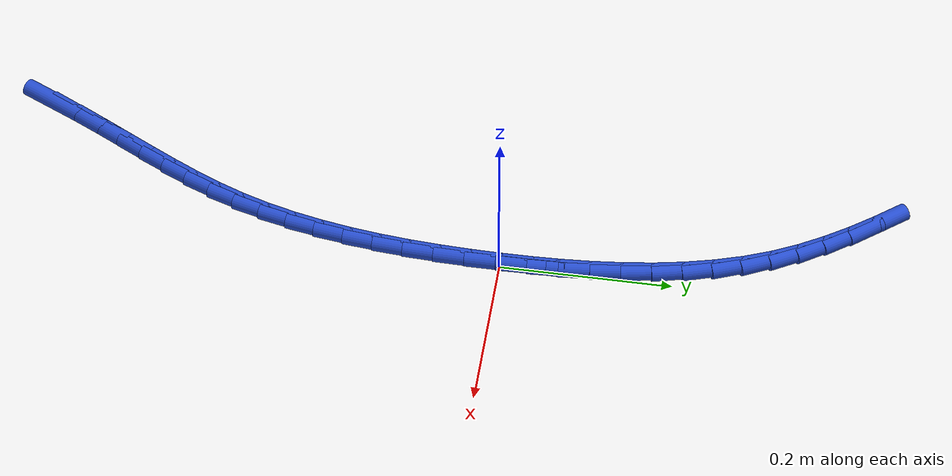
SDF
<sdf version="1.6">
 <world name="default">
  <model name="ground_plane">
   <static>1</static>
   <link name="link">
    <collision name="collision">
     <geometry><plane><normal>0 0 1</normal><size>100 100</size></plane></geometry>
     <surface><friction><ode><mu>100</mu><mu2>50</mu2></ode></friction></surface>
    </collision>
    <visual name="visual">
     <cast_shadows>0</cast_shadows>
     <geometry><plane><normal>0 0 1</normal><size>100 100</size></plane></geometry>
     <material>
      <script><uri>file://media/materials/scripts/gazebo.material</uri><name>Gazebo/WhiteGlow</name></script>
     </material>
    </visual>
   </link>
  </model>
  <model name="line">
   <link name="link_0">
    <pose>-1.2576745200831851e-17 -1.457167719820518e-16 0.01 0 1.57 1.5697502538254684</pose>
    <collision name="collision">
     <geometry><cylinder><radius>0.01</radius><length>0.08</length></cylinder></geometry>
    </collision>
    <visual name="visual">
     <material>
      <script><name>Gazebo/Blue</name><uri>file://media/materials/scripts/gazebo.material</uri></script>
     </material>
     <geometry><cylinder><radius>0.01</radius><length>0.08</length></cylinder></geometry>
    </visual>
   </link>
   <link name="link_1">
    <pose>3.7914222122537875e-05 0.03624432463236966 0.01 0 1.57 -1.545426358394945</pose>
    <collision name="collision">
     <geometry><cylinder><radius>0.01</radius><length>0.08</length></cylinder></geometry>
    </collision>
    <visual name="visual">
     <material>
      <script><name>Gazebo/Blue</name><uri>file://media/materials/scripts/gazebo.material</uri></script>
     </material>
     <geometry><cylinder><radius>0.01</radius><length>0.08</length></cylinder></geometry>
    </visual>
   </link>
   <link name="link_2">
    <pose>-0.0008799646611043588 0.07241630300828511 0.01 0 1.57 -1.513676365276203</pose>
    <collision name="collision">
     <geometry><cylinder><radius>0.01</radius><length>0.08</length></cylinder></geometry>
    </collision>
    <visual name="visual">
     <material>
      <script><name>Gazebo/Blue</name><uri>file://media/materials/scripts/gazebo.material</uri></script>
     </material>
     <geometry><cylinder><radius>0.01</radius><length>0.08</length></cylinder></geometry>
    </visual>
   </link>
   <link name="link_3">
    <pose>-0.002934808854095043 0.10835135756664083 0.01 0 1.57 -1.476156049259588</pose>
    <collision name="collision">
     <geometry><cylinder><radius>0.01</radius><length>0.08</length></cylinder></geometry>
    </collision>
    <visual name="visual">
     <material>
      <script><name>Gazebo/Blue</name><uri>file://media/materials/scripts/gazebo.material</uri></script>
     </material>
     <geometry><cylinder><radius>0.01</radius><length>0.08</length></cylinder></geometry>
    </visual>
   </link>
   <link name="link_4">
    <pose>-0.006307790561263857 0.1438849107463313 0.01 0 1.57 -1.4323499008135117</pose>
    <collision name="collision">
     <geometry><cylinder><radius>0.01</radius><length>0.08</length></cylinder></geometry>
    </collision>
    <visual name="visual">
     <material>
      <script><name>Gazebo/Blue</name><uri>file://media/materials/scripts/gazebo.material</uri></script>
     </material>
     <geometry><cylinder><radius>0.01</radius><length>0.08</length></cylinder></geometry>
    </visual>
   </link>
   <link name="link_5">
    <pose>-0.011180081987025135 0.17885238498625114 0.01 0 1.57 -1.3816878339021579</pose>
    <collision name="collision">
     <geometry><cylinder><radius>0.01</radius><length>0.08</length></cylinder></geometry>
    </collision>
    <visual name="visual">
     <material>
      <script><name>Gazebo/Blue</name><uri>file://media/materials/scripts/gazebo.material</uri></script>
     </material>
     <geometry><cylinder><radius>0.01</radius><length>0.08</length></cylinder></geometry>
    </visual>
   </link>
   <link name="link_6">
    <pose>-0.017732855335793215 0.21308920272529502 0.01 0 1.57 -1.3235879838514422</pose>
    <collision name="collision">
     <geometry><cylinder><radius>0.01</radius><length>0.08</length></cylinder></geometry>
    </collision>
    <visual name="visual">
     <material>
      <script><name>Gazebo/Blue</name><uri>file://media/materials/scripts/gazebo.material</uri></script>
     </material>
     <geometry><cylinder><radius>0.01</radius><length>0.08</length></cylinder></geometry>
    </visual>
   </link>
   <link name="link_7">
    <pose>-0.026147282811982454 0.24643078640235747 0.01 0 1.57 -1.257526359712742</pose>
    <collision name="collision">
     <geometry><cylinder><radius>0.01</radius><length>0.08</length></cylinder></geometry>
    </collision>
    <visual name="visual">
     <material>
      <script><name>Gazebo/Blue</name><uri>file://media/materials/scripts/gazebo.material</uri></script>
     </material>
     <geometry><cylinder><radius>0.01</radius><length>0.08</length></cylinder></geometry>
    </visual>
   </link>
   <link name="link_8">
    <pose>-0.03660453662000715 0.27871255845633297 0.01 0 1.57 -1.1831409296070645</pose>
    <collision name="collision">
     <geometry><cylinder><radius>0.01</radius><length>0.08</length></cylinder></geometry>
    </collision>
    <visual name="visual">
     <material>
      <script><name>Gazebo/Blue</name><uri>file://media/materials/scripts/gazebo.material</uri></script>
     </material>
     <geometry><cylinder><radius>0.01</radius><length>0.08</length></cylinder></geometry>
    </visual>
   </link>
   <link name="link_9">
    <pose>-0.049285787808515905 0.30976994225653803 0.01 0 1.57 -1.1034608789886708</pose>
    <collision name="collision">
     <geometry><cylinder><radius>0.01</radius><length>0.08</length></cylinder></geometry>
    </collision>
    <visual name="visual">
     <material>
      <script><name>Gazebo/Blue</name><uri>file://media/materials/scripts/gazebo.material</uri></script>
     </material>
     <geometry><cylinder><radius>0.01</radius><length>0.08</length></cylinder></geometry>
    </visual>
   </link>
   <link name="link_10">
    <pose>-0.06429029239537064 0.3395043049179422 0.01 0 1.57 -1.030679955492988</pose>
    <collision name="collision">
     <geometry><cylinder><radius>0.01</radius><length>0.08</length></cylinder></geometry>
    </collision>
    <visual name="visual">
     <material>
      <script><name>Gazebo/Blue</name><uri>file://media/materials/scripts/gazebo.material</uri></script>
     </material>
     <geometry><cylinder><radius>0.01</radius><length>0.08</length></cylinder></geometry>
    </visual>
   </link>
   <link name="link_11">
    <pose>-0.0814130886452059 0.36806191681624084 0.01 0 1.57 -0.9684711311641314</pose>
    <collision name="collision">
     <geometry><cylinder><radius>0.01</radius><length>0.08</length></cylinder></geometry>
    </collision>
    <visual name="visual">
     <material>
      <script><name>Gazebo/Blue</name><uri>file://media/materials/scripts/gazebo.material</uri></script>
     </material>
     <geometry><cylinder><radius>0.01</radius><length>0.08</length></cylinder></geometry>
    </visual>
   </link>
   <link name="link_12">
    <pose>-0.10037860725663243 0.3956458892674348 0.01 0 1.57 -0.9172846801272387</pose>
    <collision name="collision">
     <geometry><cylinder><radius>0.01</radius><length>0.08</length></cylinder></geometry>
    </collision>
    <visual name="visual">
     <material>
      <script><name>Gazebo/Blue</name><uri>file://media/materials/scripts/gazebo.material</uri></script>
     </material>
     <geometry><cylinder><radius>0.01</radius><length>0.08</length></cylinder></geometry>
    </visual>
   </link>
   <link name="link_13">
    <pose>-0.12091127892826103 0.4224593335875253 0.01 0 1.57 -0.8771255958523567</pose>
    <collision name="collision">
     <geometry><cylinder><radius>0.01</radius><length>0.08</length></cylinder></geometry>
    </collision>
    <visual name="visual">
     <material>
      <script><name>Gazebo/Blue</name><uri>file://media/materials/scripts/gazebo.material</uri></script>
     </material>
     <geometry><cylinder><radius>0.01</radius><length>0.08</length></cylinder></geometry>
    </visual>
   </link>
   <link name="link_183">
    <pose>-0.17584830570616333 -0.5551097737119648 0.01 0 1.57 1.102348649117087</pose>
    <collision name="collision">
     <geometry><cylinder><radius>0.01</radius><length>0.08</length></cylinder></geometry>
    </collision>
    <visual name="visual">
     <material>
      <script><name>Gazebo/Blue</name><uri>file://media/materials/scripts/gazebo.material</uri></script>
     </material>
     <geometry><cylinder><radius>0.01</radius><length>0.08</length></cylinder></geometry>
    </visual>
   </link>
   <link name="link_184">
    <pose>-0.15923647087553555 -0.5222810057136303 0.01 0 1.57 1.0764316126448985</pose>
    <collision name="collision">
     <geometry><cylinder><radius>0.01</radius><length>0.08</length></cylinder></geometry>
    </collision>
    <visual name="visual">
     <material>
      <script><name>Gazebo/Blue</name><uri>file://media/materials/scripts/gazebo.material</uri></script>
     </material>
     <geometry><cylinder><radius>0.01</radius><length>0.08</length></cylinder></geometry>
    </visual>
   </link>
   <link name="link_185">
    <pose>-0.1422253556514544 -0.49072094907286595 0.01 0 1.57 1.0614722572534159</pose>
    <collision name="collision">
     <geometry><cylinder><radius>0.01</radius><length>0.08</length></cylinder></geometry>
    </collision>
    <visual name="visual">
     <material>
      <script><name>Gazebo/Blue</name><uri>file://media/materials/scripts/gazebo.material</uri></script>
     </material>
     <geometry><cylinder><radius>0.01</radius><length>0.08</length></cylinder></geometry>
    </visual>
   </link>
   <link name="link_186">
    <pose>-0.1251268656907155 -0.4601043717496842 0.01 0 1.57 1.058409439546105</pose>
    <collision name="collision">
     <geometry><cylinder><radius>0.01</radius><length>0.08</length></cylinder></geometry>
    </collision>
    <visual name="visual">
     <material>
      <script><name>Gazebo/Blue</name><uri>file://media/materials/scripts/gazebo.material</uri></script>
     </material>
     <geometry><cylinder><radius>0.01</radius><length>0.08</length></cylinder></geometry>
    </visual>
   </link>
   <link name="link_187">
    <pose>-0.10825290665011442 -0.4301060417040978 0.01 0 1.57 1.0679634717951816</pose>
    <collision name="collision">
     <geometry><cylinder><radius>0.01</radius><length>0.08</length></cylinder></geometry>
    </collision>
    <visual name="visual">
     <material>
      <script><name>Gazebo/Blue</name><uri>file://media/materials/scripts/gazebo.material</uri></script>
     </material>
     <geometry><cylinder><radius>0.01</radius><length>0.08</length></cylinder></geometry>
    </visual>
   </link>
   <link name="link_188">
    <pose>-0.09191538418644675 -0.4004007268961193 0.01 0 1.57 1.09059795317401</pose>
    <collision name="collision">
     <geometry><cylinder><radius>0.01</radius><length>0.08</length></cylinder></geometry>
    </collision>
    <visual name="visual">
     <material>
      <script><name>Gazebo/Blue</name><uri>file://media/materials/scripts/gazebo.material</uri></script>
     </material>
     <geometry><cylinder><radius>0.01</radius><length>0.08</length></cylinder></geometry>
    </visual>
   </link>
   <link name="link_189">
    <pose>-0.07642620395650813 -0.3706631952857616 0.01 0 1.57 1.1264315813278005</pose>
    <collision name="collision">
     <geometry><cylinder><radius>0.01</radius><length>0.08</length></cylinder></geometry>
    </collision>
    <visual name="visual">
     <material>
      <script><name>Gazebo/Blue</name><uri>file://media/materials/scripts/gazebo.material</uri></script>
     </material>
     <geometry><cylinder><radius>0.01</radius><length>0.08</length></cylinder></geometry>
    </visual>
   </link>
   <link name="link_190">
    <pose>-0.062097271617094184 -0.34056821483303734 0.01 0 1.57 1.1750987855696322</pose>
    <collision name="collision">
     <geometry><cylinder><radius>0.01</radius><length>0.08</length></cylinder></geometry>
    </collision>
    <visual name="visual">
     <material>
      <script><name>Gazebo/Blue</name><uri>file://media/materials/scripts/gazebo.material</uri></script>
     </material>
     <geometry><cylinder><radius>0.01</radius><length>0.08</length></cylinder></geometry>
    </visual>
   </link>
   <link name="link_191">
    <pose>-0.04924049282500047 -0.30979055349795925 0.01 0 1.57 1.2330919272209035</pose>
    <collision name="collision">
     <geometry><cylinder><radius>0.01</radius><length>0.08</length></cylinder></geometry>
    </collision>
    <visual name="visual">
     <material>
      <script><name>Gazebo/Blue</name><uri>file://media/materials/scripts/gazebo.material</uri></script>
     </material>
     <geometry><cylinder><radius>0.01</radius><length>0.08</length></cylinder></geometry>
    </visual>
   </link>
   <link name="link_192">
    <pose>-0.03810203618862546 -0.27807116722719816 0.01 0 1.57 1.2887352277167714</pose>
    <collision name="collision">
     <geometry><cylinder><radius>0.01</radius><length>0.08</length></cylinder></geometry>
    </collision>
    <visual name="visual">
     <material>
      <script><name>Gazebo/Blue</name><uri>file://media/materials/scripts/gazebo.material</uri></script>
     </material>
     <geometry><cylinder><radius>0.01</radius><length>0.08</length></cylinder></geometry>
    </visual>
   </link>
   <link name="link_193">
    <pose>-0.02864483753702829 -0.2454361876465392 0.01 0 1.57 1.339160870154734</pose>
    <collision name="collision">
     <geometry><cylinder><radius>0.01</radius><length>0.08</length></cylinder></geometry>
    </collision>
    <visual name="visual">
     <material>
      <script><name>Gazebo/Blue</name><uri>file://media/materials/scripts/gazebo.material</uri></script>
     </material>
     <geometry><cylinder><radius>0.01</radius><length>0.08</length></cylinder></geometry>
    </visual>
   </link>
   <link name="link_194">
    <pose>-0.020755568176264675 -0.21198853405864446 0.01 0 1.57 1.3845956435244473</pose>
    <collision name="collision">
     <geometry><cylinder><radius>0.01</radius><length>0.08</length></cylinder></geometry>
    </collision>
    <visual name="visual">
     <material>
      <script><name>Gazebo/Blue</name><uri>file://media/materials/scripts/gazebo.material</uri></script>
     </material>
     <geometry><cylinder><radius>0.01</radius><length>0.08</length></cylinder></geometry>
    </visual>
   </link>
   <link name="link_195">
    <pose>-0.014320898336349119 -0.17783112684959723 0.01 0 1.57 1.4253187483686571</pose>
    <collision name="collision">
     <geometry><cylinder><radius>0.01</radius><length>0.08</length></cylinder></geometry>
    </collision>
    <visual name="visual">
     <material>
      <script><name>Gazebo/Blue</name><uri>file://media/materials/scripts/gazebo.material</uri></script>
     </material>
     <geometry><cylinder><radius>0.01</radius><length>0.08</length></cylinder></geometry>
    </visual>
   </link>
   <link name="link_196">
    <pose>-0.00922749824729613 -0.1430668864054813 0.01 0 1.57 1.4616300596002838</pose>
    <collision name="collision">
     <geometry><cylinder><radius>0.01</radius><length>0.08</length></cylinder></geometry>
    </collision>
    <visual name="visual">
     <material>
      <script><name>Gazebo/Blue</name><uri>file://media/materials/scripts/gazebo.material</uri></script>
     </material>
     <geometry><cylinder><radius>0.01</radius><length>0.08</length></cylinder></geometry>
    </visual>
   </link>
   <link name="link_197">
    <pose>-0.005362038139120213 -0.10779873311238002 0.01 0 1.57 1.493827409139011</pose>
    <collision name="collision">
     <geometry><cylinder><radius>0.01</radius><length>0.08</length></cylinder></geometry>
    </collision>
    <visual name="visual">
     <material>
      <script><name>Gazebo/Blue</name><uri>file://media/materials/scripts/gazebo.material</uri></script>
     </material>
     <geometry><cylinder><radius>0.01</radius><length>0.08</length></cylinder></geometry>
    </visual>
   </link>
   <link name="link_198">
    <pose>-0.0026111882418358833 -0.07212958735637706 0.01 0 1.57 1.5221911918261453</pose>
    <collision name="collision">
     <geometry><cylinder><radius>0.01</radius><length>0.08</length></cylinder></geometry>
    </collision>
    <visual name="visual">
     <material>
      <script><name>Gazebo/Blue</name><uri>file://media/materials/scripts/gazebo.material</uri></script>
     </material>
     <geometry><cylinder><radius>0.01</radius><length>0.08</length></cylinder></geometry>
    </visual>
   </link>
   <link name="link_199">
    <pose>-0.0008616187854576475 -0.03616236952355595 0.01 0 1.57 1.5469744421616898</pose>
    <collision name="collision">
     <geometry><cylinder><radius>0.01</radius><length>0.08</length></cylinder></geometry>
    </collision>
    <visual name="visual">
     <material>
      <script><name>Gazebo/Blue</name><uri>file://media/materials/scripts/gazebo.material</uri></script>
     </material>
     <geometry><cylinder><radius>0.01</radius><length>0.08</length></cylinder></geometry>
    </visual>
   </link>
   <link name="link_200">
    <pose>-1.2576745200831851e-17 -2.0816681711721685e-16 0.01 0 1.57 1.568396694319286</pose>
    <collision name="collision">
     <geometry><cylinder><radius>0.01</radius><length>0.08</length></cylinder></geometry>
    </collision>
    <visual name="visual">
     <material>
      <script><name>Gazebo/Blue</name><uri>file://media/materials/scripts/gazebo.material</uri></script>
     </material>
     <geometry><cylinder><radius>0.01</radius><length>0.08</length></cylinder></geometry>
    </visual>
   </link>
   <link name="link_201">
    <pose>8.699788452250484e-05 0.0362546008282074 0.01 0 1.57 1.568396694319286</pose>
    <collision name="collision">
     <geometry><cylinder><radius>0.01</radius><length>0.08</length></cylinder></geometry>
    </collision>
    <visual name="visual">
     <material>
      <script><name>Gazebo/Blue</name><uri>file://media/materials/scripts/gazebo.material</uri></script>
     </material>
     <geometry><cylinder><radius>0.01</radius><length>0.08</length></cylinder></geometry>
    </visual>
   </link>
  </model>
 </world>
</sdf>
